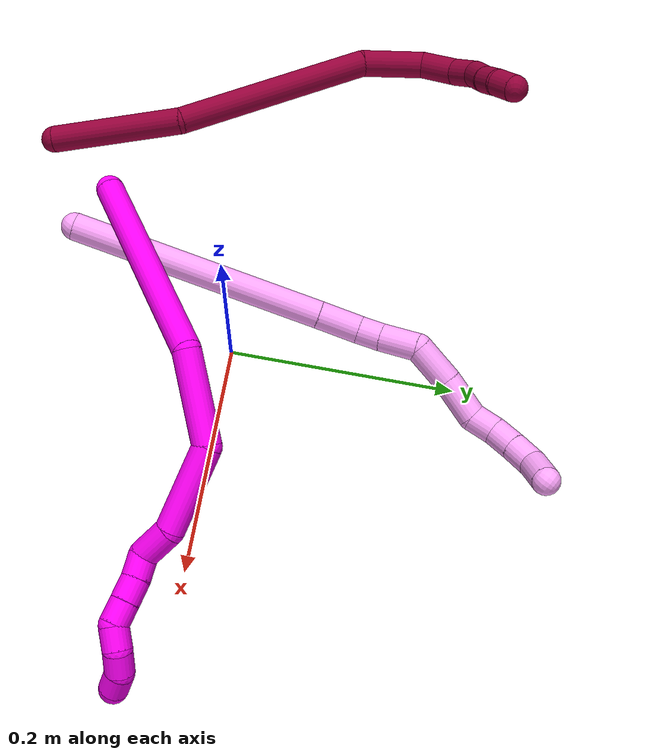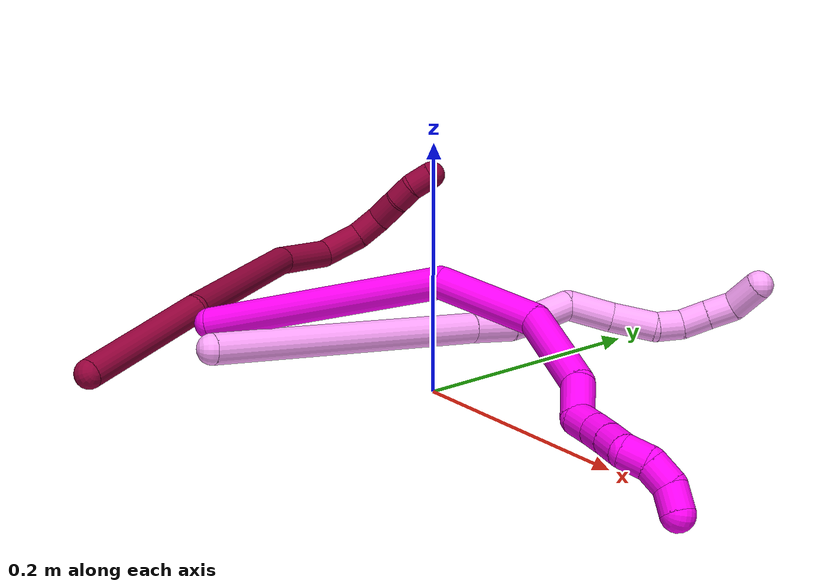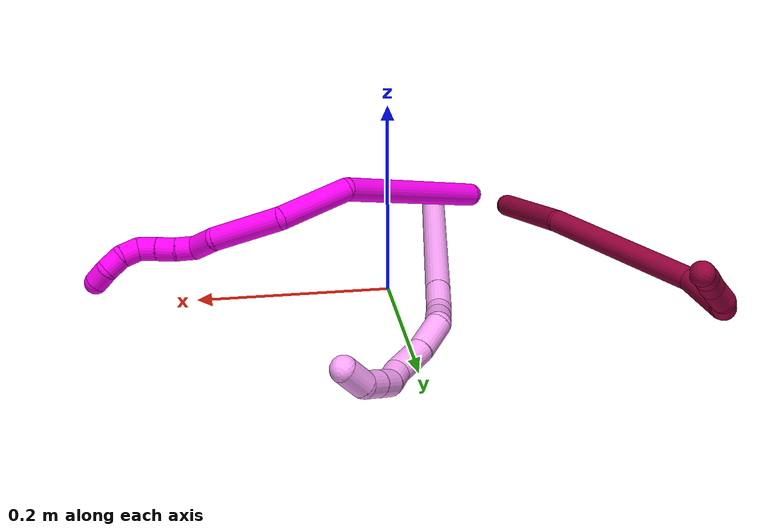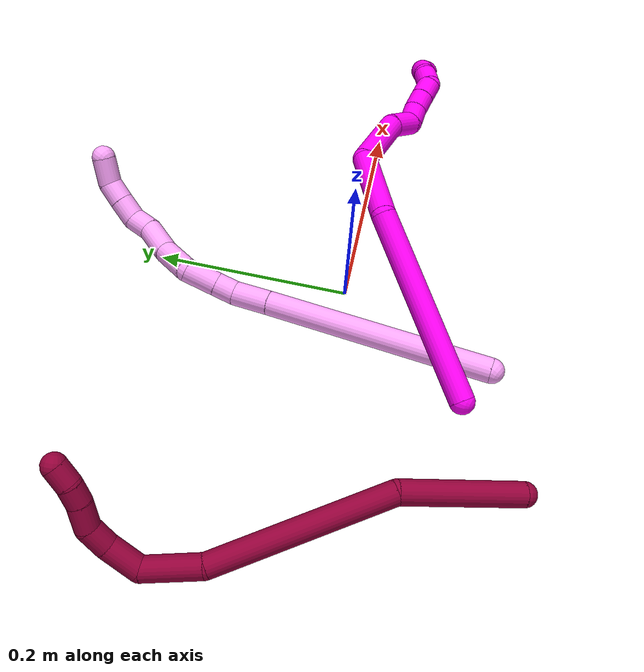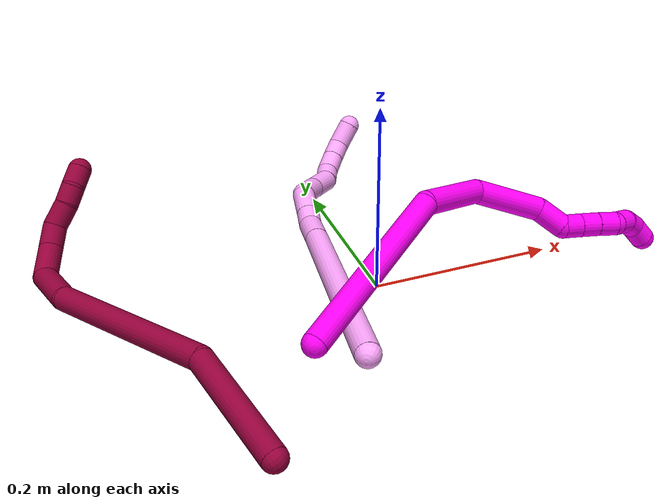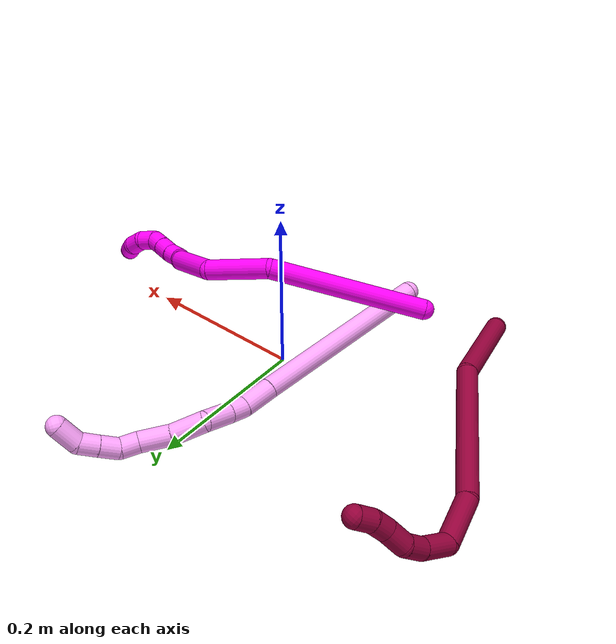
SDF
<sdf version="1.7">
 <world name="default">
  <model name="4">
   <static>0</static>
   <link name="4">
    <collision name="collision-cylinder-e_1_1_4">
     <pose>0.039434 -0.006674 0.108438 0.061467 0.348181 0.010813</pose>
     <geometry><cylinder><radius>0.0125</radius><length>0.231157</length></cylinder></geometry>
     <surface>
      <friction><ode><mu>1.16</mu><mu2>1.16</mu2><slip1>0</slip1><slip2>0</slip2></ode></friction>
      <contact><ode><kp>1e+06</kp><kd>1</kd><max_vel>0</max_vel><min_depth>0.001</min_depth></ode></contact>
     </surface>
    </collision>
    <visual name="visual-cylinder-e_1_1_4">
     <pose>0.039434 -0.006674 0.108438 0.061467 0.348181 0.010813</pose>
     <geometry><cylinder><radius>0.0125</radius><length>0.231157</length></cylinder></geometry>
     <material><ambient>1 0.65098 0.996078 1</ambient></material>
    </visual>
    <collision name="collision-cylinder-e_2_4_5">
     <pose>0.085359 -0.015014 0.23478 0.092791 0.346415 0.016246</pose>
     <geometry><cylinder><radius>0.0125</radius><length>0.038234</length></cylinder></geometry>
     <surface>
      <friction><ode><mu>1.16</mu><mu2>1.16</mu2><slip1>0</slip1><slip2>0</slip2></ode></friction>
      <contact><ode><kp>1e+06</kp><kd>1</kd><max_vel>0</max_vel><min_depth>0.001</min_depth></ode></contact>
     </surface>
    </collision>
    <visual name="visual-cylinder-e_2_4_5">
     <pose>0.085359 -0.015014 0.23478 0.092791 0.346415 0.016246</pose>
     <geometry><cylinder><radius>0.0125</radius><length>0.038234</length></cylinder></geometry>
     <material><ambient>1 0.65098 0.996078 1</ambient></material>
    </visual>
    <collision name="collision-cylinder-e_3_5_6">
     <pose>0.094979 -0.014811 0.262877 -0.181271 0.293294 -0.026847</pose>
     <geometry><cylinder><radius>0.0125</radius><length>0.02165</length></cylinder></geometry>
     <surface>
      <friction><ode><mu>1.16</mu><mu2>1.16</mu2><slip1>0</slip1><slip2>0</slip2></ode></friction>
      <contact><ode><kp>1e+06</kp><kd>1</kd><max_vel>0</max_vel><min_depth>0.001</min_depth></ode></contact>
     </surface>
    </collision>
    <visual name="visual-cylinder-e_3_5_6">
     <pose>0.094979 -0.014811 0.262877 -0.181271 0.293294 -0.026847</pose>
     <geometry><cylinder><radius>0.0125</radius><length>0.02165</length></cylinder></geometry>
     <material><ambient>1 0.65098 0.996078 1</ambient></material>
    </visual>
    <collision name="collision-cylinder-e_4_6_7">
     <pose>0.103484 -0.008676 0.288618 -0.267848 0.321811 -0.043729</pose>
     <geometry><cylinder><radius>0.0125</radius><length>0.033992</length></cylinder></geometry>
     <surface>
      <friction><ode><mu>1.16</mu><mu2>1.16</mu2><slip1>0</slip1><slip2>0</slip2></ode></friction>
      <contact><ode><kp>1e+06</kp><kd>1</kd><max_vel>0</max_vel><min_depth>0.001</min_depth></ode></contact>
     </surface>
    </collision>
    <visual name="visual-cylinder-e_4_6_7">
     <pose>0.103484 -0.008676 0.288618 -0.267848 0.321811 -0.043729</pose>
     <geometry><cylinder><radius>0.0125</radius><length>0.033992</length></cylinder></geometry>
     <material><ambient>1 0.65098 0.996078 1</ambient></material>
    </visual>
    <collision name="collision-cylinder-e_5_7_8">
     <pose>0.106328 -0.009001 0.322676 0.243184 -0.131992 -0.016152</pose>
     <geometry><cylinder><radius>0.0125</radius><length>0.038476</length></cylinder></geometry>
     <surface>
      <friction><ode><mu>1.16</mu><mu2>1.16</mu2><slip1>0</slip1><slip2>0</slip2></ode></friction>
      <contact><ode><kp>1e+06</kp><kd>1</kd><max_vel>0</max_vel><min_depth>0.001</min_depth></ode></contact>
     </surface>
    </collision>
    <visual name="visual-cylinder-e_5_7_8">
     <pose>0.106328 -0.009001 0.322676 0.243184 -0.131992 -0.016152</pose>
     <geometry><cylinder><radius>0.0125</radius><length>0.038476</length></cylinder></geometry>
     <material><ambient>1 0.65098 0.996078 1</ambient></material>
    </visual>
    <collision name="collision-cylinder-e_6_8_9">
     <pose>0.098615 -0.0161 0.359394 0.136811 -0.274733 -0.018941</pose>
     <geometry><cylinder><radius>0.0125</radius><length>0.038193</length></cylinder></geometry>
     <surface>
      <friction><ode><mu>1.16</mu><mu2>1.16</mu2><slip1>0</slip1><slip2>0</slip2></ode></friction>
      <contact><ode><kp>1e+06</kp><kd>1</kd><max_vel>0</max_vel><min_depth>0.001</min_depth></ode></contact>
     </surface>
    </collision>
    <visual name="visual-cylinder-e_6_8_9">
     <pose>0.098615 -0.0161 0.359394 0.136811 -0.274733 -0.018941</pose>
     <geometry><cylinder><radius>0.0125</radius><length>0.038193</length></cylinder></geometry>
     <material><ambient>1 0.65098 0.996078 1</ambient></material>
    </visual>
    <collision name="collision-cylinder-e_7_9_10">
     <pose>0.094399 -0.017911 0.389017 -0.060867 0.084156 -0.002563</pose>
     <geometry><cylinder><radius>0.0125</radius><length>0.022953</length></cylinder></geometry>
     <surface>
      <friction><ode><mu>1.16</mu><mu2>1.16</mu2><slip1>0</slip1><slip2>0</slip2></ode></friction>
      <contact><ode><kp>1e+06</kp><kd>1</kd><max_vel>0</max_vel><min_depth>0.001</min_depth></ode></contact>
     </surface>
    </collision>
    <visual name="visual-cylinder-e_7_9_10">
     <pose>0.094399 -0.017911 0.389017 -0.060867 0.084156 -0.002563</pose>
     <geometry><cylinder><radius>0.0125</radius><length>0.022953</length></cylinder></geometry>
     <material><ambient>1 0.65098 0.996078 1</ambient></material>
    </visual>
    <collision name="collision-cylinder-e_8_10_11">
     <pose>0.093599 -0.012255 0.410898 -0.442594 -0.151263 0.034093</pose>
     <geometry><cylinder><radius>0.0125</radius><length>0.023432</length></cylinder></geometry>
     <surface>
      <friction><ode><mu>1.16</mu><mu2>1.16</mu2><slip1>0</slip1><slip2>0</slip2></ode></friction>
      <contact><ode><kp>1e+06</kp><kd>1</kd><max_vel>0</max_vel><min_depth>0.001</min_depth></ode></contact>
     </surface>
    </collision>
    <visual name="visual-cylinder-e_8_10_11">
     <pose>0.093599 -0.012255 0.410898 -0.442594 -0.151263 0.034093</pose>
     <geometry><cylinder><radius>0.0125</radius><length>0.023432</length></cylinder></geometry>
     <material><ambient>1 0.65098 0.996078 1</ambient></material>
    </visual>
    <collision name="collision-cylinder-e_9_11_12">
     <pose>0.089702 -0.002587 0.431555 -0.432758 -0.187612 0.041356</pose>
     <geometry><cylinder><radius>0.0125</radius><length>0.022852</length></cylinder></geometry>
     <surface>
      <friction><ode><mu>1.16</mu><mu2>1.16</mu2><slip1>0</slip1><slip2>0</slip2></ode></friction>
      <contact><ode><kp>1e+06</kp><kd>1</kd><max_vel>0</max_vel><min_depth>0.001</min_depth></ode></contact>
     </surface>
    </collision>
    <visual name="visual-cylinder-e_9_11_12">
     <pose>0.089702 -0.002587 0.431555 -0.432758 -0.187612 0.041356</pose>
     <geometry><cylinder><radius>0.0125</radius><length>0.022852</length></cylinder></geometry>
     <material><ambient>1 0.65098 0.996078 1</ambient></material>
    </visual>
    <collision name="collision-cylinder-e_10_12_2">
     <pose>0.082129 0.013092 0.449567 -0.95142 -0.383878 0.199563</pose>
     <geometry><cylinder><radius>0.0125</radius><length>0.029062</length></cylinder></geometry>
     <surface>
      <friction><ode><mu>1.16</mu><mu2>1.16</mu2><slip1>0</slip1><slip2>0</slip2></ode></friction>
      <contact><ode><kp>1e+06</kp><kd>1</kd><max_vel>0</max_vel><min_depth>0.001</min_depth></ode></contact>
     </surface>
    </collision>
    <visual name="visual-cylinder-e_10_12_2">
     <pose>0.082129 0.013092 0.449567 -0.95142 -0.383878 0.199563</pose>
     <geometry><cylinder><radius>0.0125</radius><length>0.029062</length></cylinder></geometry>
     <material><ambient>1 0.65098 0.996078 1</ambient></material>
    </visual>
    <collision name="collision-sphere-2">
     <pose>0.076687 0.024062 0.457389 0 -0 0</pose>
     <geometry><sphere><radius>0.0125</radius></sphere></geometry>
     <surface>
      <friction><ode><mu>1.16</mu><mu2>1.16</mu2><slip1>0</slip1><slip2>0</slip2></ode></friction>
      <contact><ode><kp>1e+06</kp><kd>1</kd><max_vel>0</max_vel><min_depth>0.001</min_depth></ode></contact>
     </surface>
    </collision>
    <visual name="visual-sphere-2">
     <pose>0.076687 0.024062 0.457389 0 -0 0</pose>
     <geometry><sphere><radius>0.0125</radius></sphere></geometry>
     <material><ambient>1 0.65098 0.996078 1</ambient></material>
    </visual>
    <collision name="collision-sphere-12">
     <pose>0.087571 0.002121 0.441745 0 -0 0</pose>
     <geometry><sphere><radius>0.0125</radius></sphere></geometry>
     <surface>
      <friction><ode><mu>1.16</mu><mu2>1.16</mu2><slip1>0</slip1><slip2>0</slip2></ode></friction>
      <contact><ode><kp>1e+06</kp><kd>1</kd><max_vel>0</max_vel><min_depth>0.001</min_depth></ode></contact>
     </surface>
    </collision>
    <visual name="visual-sphere-12">
     <pose>0.087571 0.002121 0.441745 0 -0 0</pose>
     <geometry><sphere><radius>0.0125</radius></sphere></geometry>
     <material><ambient>1 0.65098 0.996078 1</ambient></material>
    </visual>
    <collision name="collision-sphere-11">
     <pose>0.091833 -0.007294 0.421364 0 -0 0</pose>
     <geometry><sphere><radius>0.0125</radius></sphere></geometry>
     <surface>
      <friction><ode><mu>1.16</mu><mu2>1.16</mu2><slip1>0</slip1><slip2>0</slip2></ode></friction>
      <contact><ode><kp>1e+06</kp><kd>1</kd><max_vel>0</max_vel><min_depth>0.001</min_depth></ode></contact>
     </surface>
    </collision>
    <visual name="visual-sphere-11">
     <pose>0.091833 -0.007294 0.421364 0 -0 0</pose>
     <geometry><sphere><radius>0.0125</radius></sphere></geometry>
     <material><ambient>1 0.65098 0.996078 1</ambient></material>
    </visual>
    <collision name="collision-sphere-10">
     <pose>0.095364 -0.017215 0.400432 0 -0 0</pose>
     <geometry><sphere><radius>0.0125</radius></sphere></geometry>
     <surface>
      <friction><ode><mu>1.16</mu><mu2>1.16</mu2><slip1>0</slip1><slip2>0</slip2></ode></friction>
      <contact><ode><kp>1e+06</kp><kd>1</kd><max_vel>0</max_vel><min_depth>0.001</min_depth></ode></contact>
     </surface>
    </collision>
    <visual name="visual-sphere-10">
     <pose>0.095364 -0.017215 0.400432 0 -0 0</pose>
     <geometry><sphere><radius>0.0125</radius></sphere></geometry>
     <material><ambient>1 0.65098 0.996078 1</ambient></material>
    </visual>
    <collision name="collision-sphere-9">
     <pose>0.093435 -0.018607 0.377602 0 -0 0</pose>
     <geometry><sphere><radius>0.0125</radius></sphere></geometry>
     <surface>
      <friction><ode><mu>1.16</mu><mu2>1.16</mu2><slip1>0</slip1><slip2>0</slip2></ode></friction>
      <contact><ode><kp>1e+06</kp><kd>1</kd><max_vel>0</max_vel><min_depth>0.001</min_depth></ode></contact>
     </surface>
    </collision>
    <visual name="visual-sphere-9">
     <pose>0.093435 -0.018607 0.377602 0 -0 0</pose>
     <geometry><sphere><radius>0.0125</radius></sphere></geometry>
     <material><ambient>1 0.65098 0.996078 1</ambient></material>
    </visual>
    <collision name="collision-sphere-4">
     <pose>0.078868 -0.013347 0.216876 0 -0 0</pose>
     <geometry><sphere><radius>0.0125</radius></sphere></geometry>
     <surface>
      <friction><ode><mu>1.16</mu><mu2>1.16</mu2><slip1>0</slip1><slip2>0</slip2></ode></friction>
      <contact><ode><kp>1e+06</kp><kd>1</kd><max_vel>0</max_vel><min_depth>0.001</min_depth></ode></contact>
     </surface>
    </collision>
    <visual name="visual-sphere-4">
     <pose>0.078868 -0.013347 0.216876 0 -0 0</pose>
     <geometry><sphere><radius>0.0125</radius></sphere></geometry>
     <material><ambient>1 0.65098 0.996078 1</ambient></material>
    </visual>
    <collision name="collision-sphere-1">
     <geometry><sphere><radius>0.0125</radius></sphere></geometry>
     <surface>
      <friction><ode><mu>1.16</mu><mu2>1.16</mu2><slip1>0</slip1><slip2>0</slip2></ode></friction>
      <contact><ode><kp>1e+06</kp><kd>1</kd><max_vel>0</max_vel><min_depth>0.001</min_depth></ode></contact>
     </surface>
    </collision>
    <visual name="visual-sphere-1">
     <geometry><sphere><radius>0.0125</radius></sphere></geometry>
     <material><ambient>1 0.65098 0.996078 1</ambient></material>
    </visual>
    <collision name="collision-sphere-8">
     <pose>0.103796 -0.013593 0.341185 0 -0 0</pose>
     <geometry><sphere><radius>0.0125</radius></sphere></geometry>
     <surface>
      <friction><ode><mu>1.16</mu><mu2>1.16</mu2><slip1>0</slip1><slip2>0</slip2></ode></friction>
      <contact><ode><kp>1e+06</kp><kd>1</kd><max_vel>0</max_vel><min_depth>0.001</min_depth></ode></contact>
     </surface>
    </collision>
    <visual name="visual-sphere-8">
     <pose>0.103796 -0.013593 0.341185 0 -0 0</pose>
     <geometry><sphere><radius>0.0125</radius></sphere></geometry>
     <material><ambient>1 0.65098 0.996078 1</ambient></material>
    </visual>
    <collision name="collision-sphere-5">
     <pose>0.091849 -0.01668 0.252684 0 -0 0</pose>
     <geometry><sphere><radius>0.0125</radius></sphere></geometry>
     <surface>
      <friction><ode><mu>1.16</mu><mu2>1.16</mu2><slip1>0</slip1><slip2>0</slip2></ode></friction>
      <contact><ode><kp>1e+06</kp><kd>1</kd><max_vel>0</max_vel><min_depth>0.001</min_depth></ode></contact>
     </surface>
    </collision>
    <visual name="visual-sphere-5">
     <pose>0.091849 -0.01668 0.252684 0 -0 0</pose>
     <geometry><sphere><radius>0.0125</radius></sphere></geometry>
     <material><ambient>1 0.65098 0.996078 1</ambient></material>
    </visual>
    <collision name="collision-sphere-6">
     <pose>0.098109 -0.012943 0.27307 0 -0 0</pose>
     <geometry><sphere><radius>0.0125</radius></sphere></geometry>
     <surface>
      <friction><ode><mu>1.16</mu><mu2>1.16</mu2><slip1>0</slip1><slip2>0</slip2></ode></friction>
      <contact><ode><kp>1e+06</kp><kd>1</kd><max_vel>0</max_vel><min_depth>0.001</min_depth></ode></contact>
     </surface>
    </collision>
    <visual name="visual-sphere-6">
     <pose>0.098109 -0.012943 0.27307 0 -0 0</pose>
     <geometry><sphere><radius>0.0125</radius></sphere></geometry>
     <material><ambient>1 0.65098 0.996078 1</ambient></material>
    </visual>
    <collision name="collision-sphere-7">
     <pose>0.10886 -0.004409 0.304166 0 -0 0</pose>
     <geometry><sphere><radius>0.0125</radius></sphere></geometry>
     <surface>
      <friction><ode><mu>1.16</mu><mu2>1.16</mu2><slip1>0</slip1><slip2>0</slip2></ode></friction>
      <contact><ode><kp>1e+06</kp><kd>1</kd><max_vel>0</max_vel><min_depth>0.001</min_depth></ode></contact>
     </surface>
    </collision>
    <visual name="visual-sphere-7">
     <pose>0.10886 -0.004409 0.304166 0 -0 0</pose>
     <geometry><sphere><radius>0.0125</radius></sphere></geometry>
     <material><ambient>1 0.65098 0.996078 1</ambient></material>
    </visual>
    <inertial>
     <pose>0.069214 -0.008141 0.234341 0 -0 0</pose>
     <mass>0.5</mass>
     <inertia>
      <ixx>0.001025</ixx>
      <ixy>0</ixy>
      <ixz>0</ixz>
      <iyy>0.001081</iyy>
      <iyz>0</iyz>
      <izz>-0.000261</izz>
     </inertia>
    </inertial>
   </link>
   <pose>-0.074496 -0.155553 0.04907 1.62565 -0.027561 2.63949</pose>
  </model>
  <model name="8">
   <static>0</static>
   <link name="8">
    <collision name="collision-cylinder-e_1_1_4">
     <pose>0.000917 0.061481 0.005154 -1.48717 0.014859 -0.013665</pose>
     <geometry><cylinder><radius>0.0125</radius><length>0.123407</length></cylinder></geometry>
     <surface>
      <friction><ode><mu>1.16</mu><mu2>1.16</mu2><slip1>0</slip1><slip2>0</slip2></ode></friction>
      <contact><ode><kp>1e+06</kp><kd>1</kd><max_vel>0</max_vel><min_depth>0.001</min_depth></ode></contact>
     </surface>
    </collision>
    <visual name="visual-cylinder-e_1_1_4">
     <pose>0.000917 0.061481 0.005154 -1.48717 0.014859 -0.013665</pose>
     <geometry><cylinder><radius>0.0125</radius><length>0.123407</length></cylinder></geometry>
     <material><ambient>0.584314 0 0.227451 1</ambient></material>
    </visual>
    <collision name="collision-cylinder-e_2_4_5">
     <pose>-0.002787 0.205485 0.053435 -1.08922 -0.049579 0.030034</pose>
     <geometry><cylinder><radius>0.0125</radius><length>0.186455</length></cylinder></geometry>
     <surface>
      <friction><ode><mu>1.16</mu><mu2>1.16</mu2><slip1>0</slip1><slip2>0</slip2></ode></friction>
      <contact><ode><kp>1e+06</kp><kd>1</kd><max_vel>0</max_vel><min_depth>0.001</min_depth></ode></contact>
     </surface>
    </collision>
    <visual name="visual-cylinder-e_2_4_5">
     <pose>-0.002787 0.205485 0.053435 -1.08922 -0.049579 0.030034</pose>
     <geometry><cylinder><radius>0.0125</radius><length>0.186455</length></cylinder></geometry>
     <material><ambient>0.584314 0 0.227451 1</ambient></material>
    </visual>
    <collision name="collision-cylinder-e_3_5_6">
     <pose>-0.015168 0.316367 0.102679 -1.35834 -0.261402 0.211447</pose>
     <geometry><cylinder><radius>0.0125</radius><length>0.060064</length></cylinder></geometry>
     <surface>
      <friction><ode><mu>1.16</mu><mu2>1.16</mu2><slip1>0</slip1><slip2>0</slip2></ode></friction>
      <contact><ode><kp>1e+06</kp><kd>1</kd><max_vel>0</max_vel><min_depth>0.001</min_depth></ode></contact>
     </surface>
    </collision>
    <visual name="visual-cylinder-e_3_5_6">
     <pose>-0.015168 0.316367 0.102679 -1.35834 -0.261402 0.211447</pose>
     <geometry><cylinder><radius>0.0125</radius><length>0.060064</length></cylinder></geometry>
     <material><ambient>0.584314 0 0.227451 1</ambient></material>
    </visual>
    <collision name="collision-cylinder-e_4_6_7">
     <pose>-0.022773 0.360773 0.099602 -2.09112 0.008432 -0.01455</pose>
     <geometry><cylinder><radius>0.0125</radius><length>0.036989</length></cylinder></geometry>
     <surface>
      <friction><ode><mu>1.16</mu><mu2>1.16</mu2><slip1>0</slip1><slip2>0</slip2></ode></friction>
      <contact><ode><kp>1e+06</kp><kd>1</kd><max_vel>0</max_vel><min_depth>0.001</min_depth></ode></contact>
     </surface>
    </collision>
    <visual name="visual-cylinder-e_4_6_7">
     <pose>-0.022773 0.360773 0.099602 -2.09112 0.008432 -0.01455</pose>
     <geometry><cylinder><radius>0.0125</radius><length>0.036989</length></cylinder></geometry>
     <material><ambient>0.584314 0 0.227451 1</ambient></material>
    </visual>
    <collision name="collision-cylinder-e_5_7_8">
     <pose>-0.019777 0.386184 0.082559 -2.26834 0.228417 -0.482049</pose>
     <geometry><cylinder><radius>0.0125</radius><length>0.025089</length></cylinder></geometry>
     <surface>
      <friction><ode><mu>1.16</mu><mu2>1.16</mu2><slip1>0</slip1><slip2>0</slip2></ode></friction>
      <contact><ode><kp>1e+06</kp><kd>1</kd><max_vel>0</max_vel><min_depth>0.001</min_depth></ode></contact>
     </surface>
    </collision>
    <visual name="visual-cylinder-e_5_7_8">
     <pose>-0.019777 0.386184 0.082559 -2.26834 0.228417 -0.482049</pose>
     <geometry><cylinder><radius>0.0125</radius><length>0.025089</length></cylinder></geometry>
     <material><ambient>0.584314 0 0.227451 1</ambient></material>
    </visual>
    <collision name="collision-cylinder-e_6_8_9">
     <pose>-0.012901 0.400489 0.06312 -2.73869 0.309973 -1.30613</pose>
     <geometry><cylinder><radius>0.0125</radius><length>0.02646</length></cylinder></geometry>
     <surface>
      <friction><ode><mu>1.16</mu><mu2>1.16</mu2><slip1>0</slip1><slip2>0</slip2></ode></friction>
      <contact><ode><kp>1e+06</kp><kd>1</kd><max_vel>0</max_vel><min_depth>0.001</min_depth></ode></contact>
     </surface>
    </collision>
    <visual name="visual-cylinder-e_6_8_9">
     <pose>-0.012901 0.400489 0.06312 -2.73869 0.309973 -1.30613</pose>
     <geometry><cylinder><radius>0.0125</radius><length>0.02646</length></cylinder></geometry>
     <material><ambient>0.584314 0 0.227451 1</ambient></material>
    </visual>
    <collision name="collision-cylinder-e_7_9_10">
     <pose>-0.005766 0.4107 0.043503 -2.56052 0.312218 -0.969069</pose>
     <geometry><cylinder><radius>0.0125</radius><length>0.020182</length></cylinder></geometry>
     <surface>
      <friction><ode><mu>1.16</mu><mu2>1.16</mu2><slip1>0</slip1><slip2>0</slip2></ode></friction>
      <contact><ode><kp>1e+06</kp><kd>1</kd><max_vel>0</max_vel><min_depth>0.001</min_depth></ode></contact>
     </surface>
    </collision>
    <visual name="visual-cylinder-e_7_9_10">
     <pose>-0.005766 0.4107 0.043503 -2.56052 0.312218 -0.969069</pose>
     <geometry><cylinder><radius>0.0125</radius><length>0.020182</length></cylinder></geometry>
     <material><ambient>0.584314 0 0.227451 1</ambient></material>
    </visual>
    <collision name="collision-cylinder-e_8_10_2">
     <pose>-0.001588 0.423329 0.027813 -2.37649 0.101147 -0.250275</pose>
     <geometry><cylinder><radius>0.0125</radius><length>0.021355</length></cylinder></geometry>
     <surface>
      <friction><ode><mu>1.16</mu><mu2>1.16</mu2><slip1>0</slip1><slip2>0</slip2></ode></friction>
      <contact><ode><kp>1e+06</kp><kd>1</kd><max_vel>0</max_vel><min_depth>0.001</min_depth></ode></contact>
     </surface>
    </collision>
    <visual name="visual-cylinder-e_8_10_2">
     <pose>-0.001588 0.423329 0.027813 -2.37649 0.101147 -0.250275</pose>
     <geometry><cylinder><radius>0.0125</radius><length>0.021355</length></cylinder></geometry>
     <material><ambient>0.584314 0 0.227451 1</ambient></material>
    </visual>
    <collision name="collision-sphere-2">
     <pose>-0.00051 0.430686 0.020151 0 -0 0</pose>
     <geometry><sphere><radius>0.0125</radius></sphere></geometry>
     <surface>
      <friction><ode><mu>1.16</mu><mu2>1.16</mu2><slip1>0</slip1><slip2>0</slip2></ode></friction>
      <contact><ode><kp>1e+06</kp><kd>1</kd><max_vel>0</max_vel><min_depth>0.001</min_depth></ode></contact>
     </surface>
    </collision>
    <visual name="visual-sphere-2">
     <pose>-0.00051 0.430686 0.020151 0 -0 0</pose>
     <geometry><sphere><radius>0.0125</radius></sphere></geometry>
     <material><ambient>0.584314 0 0.227451 1</ambient></material>
    </visual>
    <collision name="collision-sphere-10">
     <pose>-0.002666 0.415972 0.035476 0 -0 0</pose>
     <geometry><sphere><radius>0.0125</radius></sphere></geometry>
     <surface>
      <friction><ode><mu>1.16</mu><mu2>1.16</mu2><slip1>0</slip1><slip2>0</slip2></ode></friction>
      <contact><ode><kp>1e+06</kp><kd>1</kd><max_vel>0</max_vel><min_depth>0.001</min_depth></ode></contact>
     </surface>
    </collision>
    <visual name="visual-sphere-10">
     <pose>-0.002666 0.415972 0.035476 0 -0 0</pose>
     <geometry><sphere><radius>0.0125</radius></sphere></geometry>
     <material><ambient>0.584314 0 0.227451 1</ambient></material>
    </visual>
    <collision name="collision-sphere-9">
     <pose>-0.008865 0.405429 0.05153 0 -0 0</pose>
     <geometry><sphere><radius>0.0125</radius></sphere></geometry>
     <surface>
      <friction><ode><mu>1.16</mu><mu2>1.16</mu2><slip1>0</slip1><slip2>0</slip2></ode></friction>
      <contact><ode><kp>1e+06</kp><kd>1</kd><max_vel>0</max_vel><min_depth>0.001</min_depth></ode></contact>
     </surface>
    </collision>
    <visual name="visual-sphere-9">
     <pose>-0.008865 0.405429 0.05153 0 -0 0</pose>
     <geometry><sphere><radius>0.0125</radius></sphere></geometry>
     <material><ambient>0.584314 0 0.227451 1</ambient></material>
    </visual>
    <collision name="collision-sphere-4">
     <pose>0.001834 0.122962 0.010307 0 -0 0</pose>
     <geometry><sphere><radius>0.0125</radius></sphere></geometry>
     <surface>
      <friction><ode><mu>1.16</mu><mu2>1.16</mu2><slip1>0</slip1><slip2>0</slip2></ode></friction>
      <contact><ode><kp>1e+06</kp><kd>1</kd><max_vel>0</max_vel><min_depth>0.001</min_depth></ode></contact>
     </surface>
    </collision>
    <visual name="visual-sphere-4">
     <pose>0.001834 0.122962 0.010307 0 -0 0</pose>
     <geometry><sphere><radius>0.0125</radius></sphere></geometry>
     <material><ambient>0.584314 0 0.227451 1</ambient></material>
    </visual>
    <collision name="collision-sphere-1">
     <geometry><sphere><radius>0.0125</radius></sphere></geometry>
     <surface>
      <friction><ode><mu>1.16</mu><mu2>1.16</mu2><slip1>0</slip1><slip2>0</slip2></ode></friction>
      <contact><ode><kp>1e+06</kp><kd>1</kd><max_vel>0</max_vel><min_depth>0.001</min_depth></ode></contact>
     </surface>
    </collision>
    <visual name="visual-sphere-1">
     <geometry><sphere><radius>0.0125</radius></sphere></geometry>
     <material><ambient>0.584314 0 0.227451 1</ambient></material>
    </visual>
    <collision name="collision-sphere-8">
     <pose>-0.016936 0.395548 0.074711 0 -0 0</pose>
     <geometry><sphere><radius>0.0125</radius></sphere></geometry>
     <surface>
      <friction><ode><mu>1.16</mu><mu2>1.16</mu2><slip1>0</slip1><slip2>0</slip2></ode></friction>
      <contact><ode><kp>1e+06</kp><kd>1</kd><max_vel>0</max_vel><min_depth>0.001</min_depth></ode></contact>
     </surface>
    </collision>
    <visual name="visual-sphere-8">
     <pose>-0.016936 0.395548 0.074711 0 -0 0</pose>
     <geometry><sphere><radius>0.0125</radius></sphere></geometry>
     <material><ambient>0.584314 0 0.227451 1</ambient></material>
    </visual>
    <collision name="collision-sphere-5">
     <pose>-0.007407 0.288008 0.096562 0 -0 0</pose>
     <geometry><sphere><radius>0.0125</radius></sphere></geometry>
     <surface>
      <friction><ode><mu>1.16</mu><mu2>1.16</mu2><slip1>0</slip1><slip2>0</slip2></ode></friction>
      <contact><ode><kp>1e+06</kp><kd>1</kd><max_vel>0</max_vel><min_depth>0.001</min_depth></ode></contact>
     </surface>
    </collision>
    <visual name="visual-sphere-5">
     <pose>-0.007407 0.288008 0.096562 0 -0 0</pose>
     <geometry><sphere><radius>0.0125</radius></sphere></geometry>
     <material><ambient>0.584314 0 0.227451 1</ambient></material>
    </visual>
    <collision name="collision-sphere-6">
     <pose>-0.022929 0.344727 0.108797 0 -0 0</pose>
     <geometry><sphere><radius>0.0125</radius></sphere></geometry>
     <surface>
      <friction><ode><mu>1.16</mu><mu2>1.16</mu2><slip1>0</slip1><slip2>0</slip2></ode></friction>
      <contact><ode><kp>1e+06</kp><kd>1</kd><max_vel>0</max_vel><min_depth>0.001</min_depth></ode></contact>
     </surface>
    </collision>
    <visual name="visual-sphere-6">
     <pose>-0.022929 0.344727 0.108797 0 -0 0</pose>
     <geometry><sphere><radius>0.0125</radius></sphere></geometry>
     <material><ambient>0.584314 0 0.227451 1</ambient></material>
    </visual>
    <collision name="collision-sphere-7">
     <pose>-0.022617 0.376819 0.090408 0 -0 0</pose>
     <geometry><sphere><radius>0.0125</radius></sphere></geometry>
     <surface>
      <friction><ode><mu>1.16</mu><mu2>1.16</mu2><slip1>0</slip1><slip2>0</slip2></ode></friction>
      <contact><ode><kp>1e+06</kp><kd>1</kd><max_vel>0</max_vel><min_depth>0.001</min_depth></ode></contact>
     </surface>
    </collision>
    <visual name="visual-sphere-7">
     <pose>-0.022617 0.376819 0.090408 0 -0 0</pose>
     <geometry><sphere><radius>0.0125</radius></sphere></geometry>
     <material><ambient>0.584314 0 0.227451 1</ambient></material>
    </visual>
    <inertial>
     <pose>-0.006295 0.231725 0.051328 0 -0 0</pose>
     <mass>0.5</mass>
     <inertia>
      <ixx>0.000751</ixx>
      <ixy>0</ixy>
      <ixz>0</ixz>
      <iyy>0.000314</iyy>
      <iyz>0</iyz>
      <izz>-0.000645</izz>
     </inertia>
    </inertial>
   </link>
   <pose>-0.175508 -0.206746 0.011497 2.71624 -1.08244 -2.59409</pose>
  </model>
  <model name="10">
   <static>0</static>
   <link name="10">
    <collision name="collision-cylinder-e_1_1_4">
     <pose>0.036927 0.057414 -0.068797 -2.44615 0.390895 -0.999858</pose>
     <geometry><cylinder><radius>0.0125</radius><length>0.193835</length></cylinder></geometry>
     <surface>
      <friction><ode><mu>1.16</mu><mu2>1.16</mu2><slip1>0</slip1><slip2>0</slip2></ode></friction>
      <contact><ode><kp>1e+06</kp><kd>1</kd><max_vel>0</max_vel><min_depth>0.001</min_depth></ode></contact>
     </surface>
    </collision>
    <visual name="visual-cylinder-e_1_1_4">
     <pose>0.036927 0.057414 -0.068797 -2.44615 0.390895 -0.999858</pose>
     <geometry><cylinder><radius>0.0125</radius><length>0.193835</length></cylinder></geometry>
     <material><ambient>1 0 0.964706 1</ambient></material>
    </visual>
    <collision name="collision-cylinder-e_2_4_5">
     <pose>0.101162 0.121901 -0.166045 -2.89792 0.749928 -2.53837</pose>
     <geometry><cylinder><radius>0.0125</radius><length>0.08013</length></cylinder></geometry>
     <surface>
      <friction><ode><mu>1.16</mu><mu2>1.16</mu2><slip1>0</slip1><slip2>0</slip2></ode></friction>
      <contact><ode><kp>1e+06</kp><kd>1</kd><max_vel>0</max_vel><min_depth>0.001</min_depth></ode></contact>
     </surface>
    </collision>
    <visual name="visual-cylinder-e_2_4_5">
     <pose>0.101162 0.121901 -0.166045 -2.89792 0.749928 -2.53837</pose>
     <geometry><cylinder><radius>0.0125</radius><length>0.08013</length></cylinder></geometry>
     <material><ambient>1 0 0.964706 1</ambient></material>
    </visual>
    <collision name="collision-cylinder-e_3_5_6">
     <pose>0.164999 0.128855 -0.200734 3.12242 1.40164 3.11887</pose>
     <geometry><cylinder><radius>0.0125</radius><length>0.074117</length></cylinder></geometry>
     <surface>
      <friction><ode><mu>1.16</mu><mu2>1.16</mu2><slip1>0</slip1><slip2>0</slip2></ode></friction>
      <contact><ode><kp>1e+06</kp><kd>1</kd><max_vel>0</max_vel><min_depth>0.001</min_depth></ode></contact>
     </surface>
    </collision>
    <visual name="visual-cylinder-e_3_5_6">
     <pose>0.164999 0.128855 -0.200734 3.12242 1.40164 3.11887</pose>
     <geometry><cylinder><radius>0.0125</radius><length>0.074117</length></cylinder></geometry>
     <material><ambient>1 0 0.964706 1</ambient></material>
    </visual>
    <collision name="collision-cylinder-e_4_6_7">
     <pose>0.216451 0.124259 -0.203856 0.962667 1.22042 0.700326</pose>
     <geometry><cylinder><radius>0.0125</radius><length>0.031775</length></cylinder></geometry>
     <surface>
      <friction><ode><mu>1.16</mu><mu2>1.16</mu2><slip1>0</slip1><slip2>0</slip2></ode></friction>
      <contact><ode><kp>1e+06</kp><kd>1</kd><max_vel>0</max_vel><min_depth>0.001</min_depth></ode></contact>
     </surface>
    </collision>
    <visual name="visual-cylinder-e_4_6_7">
     <pose>0.216451 0.124259 -0.203856 0.962667 1.22042 0.700326</pose>
     <geometry><cylinder><radius>0.0125</radius><length>0.031775</length></cylinder></geometry>
     <material><ambient>1 0 0.964706 1</ambient></material>
    </visual>
    <collision name="collision-cylinder-e_5_7_8">
     <pose>0.240633 0.122685 -0.203376 -2.30835 1.17032 -1.96389</pose>
     <geometry><cylinder><radius>0.0125</radius><length>0.020111</length></cylinder></geometry>
     <surface>
      <friction><ode><mu>1.16</mu><mu2>1.16</mu2><slip1>0</slip1><slip2>0</slip2></ode></friction>
      <contact><ode><kp>1e+06</kp><kd>1</kd><max_vel>0</max_vel><min_depth>0.001</min_depth></ode></contact>
     </surface>
    </collision>
    <visual name="visual-cylinder-e_5_7_8">
     <pose>0.240633 0.122685 -0.203376 -2.30835 1.17032 -1.96389</pose>
     <geometry><cylinder><radius>0.0125</radius><length>0.020111</length></cylinder></geometry>
     <material><ambient>1 0 0.964706 1</ambient></material>
    </visual>
    <collision name="collision-cylinder-e_6_8_9">
     <pose>0.259255 0.128892 -0.207269 -1.93412 1.20965 -1.57313</pose>
     <geometry><cylinder><radius>0.0125</radius><length>0.020015</length></cylinder></geometry>
     <surface>
      <friction><ode><mu>1.16</mu><mu2>1.16</mu2><slip1>0</slip1><slip2>0</slip2></ode></friction>
      <contact><ode><kp>1e+06</kp><kd>1</kd><max_vel>0</max_vel><min_depth>0.001</min_depth></ode></contact>
     </surface>
    </collision>
    <visual name="visual-cylinder-e_6_8_9">
     <pose>0.259255 0.128892 -0.207269 -1.93412 1.20965 -1.57313</pose>
     <geometry><cylinder><radius>0.0125</radius><length>0.020015</length></cylinder></geometry>
     <material><ambient>1 0 0.964706 1</ambient></material>
    </visual>
    <collision name="collision-cylinder-e_7_9_10">
     <pose>0.278067 0.13523 -0.209747 -1.95367 1.23767 -1.62389</pose>
     <geometry><cylinder><radius>0.0125</radius><length>0.02</length></cylinder></geometry>
     <surface>
      <friction><ode><mu>1.16</mu><mu2>1.16</mu2><slip1>0</slip1><slip2>0</slip2></ode></friction>
      <contact><ode><kp>1e+06</kp><kd>1</kd><max_vel>0</max_vel><min_depth>0.001</min_depth></ode></contact>
     </surface>
    </collision>
    <visual name="visual-cylinder-e_7_9_10">
     <pose>0.278067 0.13523 -0.209747 -1.95367 1.23767 -1.62389</pose>
     <geometry><cylinder><radius>0.0125</radius><length>0.02</length></cylinder></geometry>
     <material><ambient>1 0 0.964706 1</ambient></material>
    </visual>
    <collision name="collision-cylinder-e_8_10_11">
     <pose>0.294692 0.139751 -0.217785 -2.92667 0.799383 -2.64155</pose>
     <geometry><cylinder><radius>0.0125</radius><length>0.020015</length></cylinder></geometry>
     <surface>
      <friction><ode><mu>1.16</mu><mu2>1.16</mu2><slip1>0</slip1><slip2>0</slip2></ode></friction>
      <contact><ode><kp>1e+06</kp><kd>1</kd><max_vel>0</max_vel><min_depth>0.001</min_depth></ode></contact>
     </surface>
    </collision>
    <visual name="visual-cylinder-e_8_10_11">
     <pose>0.294692 0.139751 -0.217785 -2.92667 0.799383 -2.64155</pose>
     <geometry><cylinder><radius>0.0125</radius><length>0.020015</length></cylinder></geometry>
     <material><ambient>1 0 0.964706 1</ambient></material>
    </visual>
    <collision name="collision-cylinder-e_9_11_12">
     <pose>0.30952 0.138648 -0.230496 2.72731 0.871326 2.29344</pose>
     <geometry><cylinder><radius>0.0125</radius><length>0.020001</length></cylinder></geometry>
     <surface>
      <friction><ode><mu>1.16</mu><mu2>1.16</mu2><slip1>0</slip1><slip2>0</slip2></ode></friction>
      <contact><ode><kp>1e+06</kp><kd>1</kd><max_vel>0</max_vel><min_depth>0.001</min_depth></ode></contact>
     </surface>
    </collision>
    <visual name="visual-cylinder-e_9_11_12">
     <pose>0.30952 0.138648 -0.230496 2.72731 0.871326 2.29344</pose>
     <geometry><cylinder><radius>0.0125</radius><length>0.020001</length></cylinder></geometry>
     <material><ambient>1 0 0.964706 1</ambient></material>
    </visual>
    <collision name="collision-cylinder-e_10_12_2">
     <pose>0.32567 0.131185 -0.238402 1.96253 1.01567 1.38792</pose>
     <geometry><cylinder><radius>0.0125</radius><length>0.02</length></cylinder></geometry>
     <surface>
      <friction><ode><mu>1.16</mu><mu2>1.16</mu2><slip1>0</slip1><slip2>0</slip2></ode></friction>
      <contact><ode><kp>1e+06</kp><kd>1</kd><max_vel>0</max_vel><min_depth>0.001</min_depth></ode></contact>
     </surface>
    </collision>
    <visual name="visual-cylinder-e_10_12_2">
     <pose>0.32567 0.131185 -0.238402 1.96253 1.01567 1.38792</pose>
     <geometry><cylinder><radius>0.0125</radius><length>0.02</length></cylinder></geometry>
     <material><ambient>1 0 0.964706 1</ambient></material>
    </visual>
    <collision name="collision-sphere-2">
     <pose>0.334169 0.126313 -0.240414 0 -0 0</pose>
     <geometry><sphere><radius>0.0125</radius></sphere></geometry>
     <surface>
      <friction><ode><mu>1.16</mu><mu2>1.16</mu2><slip1>0</slip1><slip2>0</slip2></ode></friction>
      <contact><ode><kp>1e+06</kp><kd>1</kd><max_vel>0</max_vel><min_depth>0.001</min_depth></ode></contact>
     </surface>
    </collision>
    <visual name="visual-sphere-2">
     <pose>0.334169 0.126313 -0.240414 0 -0 0</pose>
     <geometry><sphere><radius>0.0125</radius></sphere></geometry>
     <material><ambient>1 0 0.964706 1</ambient></material>
    </visual>
    <collision name="collision-sphere-12">
     <pose>0.317172 0.136056 -0.236389 0 -0 0</pose>
     <geometry><sphere><radius>0.0125</radius></sphere></geometry>
     <surface>
      <friction><ode><mu>1.16</mu><mu2>1.16</mu2><slip1>0</slip1><slip2>0</slip2></ode></friction>
      <contact><ode><kp>1e+06</kp><kd>1</kd><max_vel>0</max_vel><min_depth>0.001</min_depth></ode></contact>
     </surface>
    </collision>
    <visual name="visual-sphere-12">
     <pose>0.317172 0.136056 -0.236389 0 -0 0</pose>
     <geometry><sphere><radius>0.0125</radius></sphere></geometry>
     <material><ambient>1 0 0.964706 1</ambient></material>
    </visual>
    <collision name="collision-sphere-11">
     <pose>0.301867 0.141239 -0.224602 0 -0 0</pose>
     <geometry><sphere><radius>0.0125</radius></sphere></geometry>
     <surface>
      <friction><ode><mu>1.16</mu><mu2>1.16</mu2><slip1>0</slip1><slip2>0</slip2></ode></friction>
      <contact><ode><kp>1e+06</kp><kd>1</kd><max_vel>0</max_vel><min_depth>0.001</min_depth></ode></contact>
     </surface>
    </collision>
    <visual name="visual-sphere-11">
     <pose>0.301867 0.141239 -0.224602 0 -0 0</pose>
     <geometry><sphere><radius>0.0125</radius></sphere></geometry>
     <material><ambient>1 0 0.964706 1</ambient></material>
    </visual>
    <collision name="collision-sphere-10">
     <pose>0.287518 0.138263 -0.210969 0 -0 0</pose>
     <geometry><sphere><radius>0.0125</radius></sphere></geometry>
     <surface>
      <friction><ode><mu>1.16</mu><mu2>1.16</mu2><slip1>0</slip1><slip2>0</slip2></ode></friction>
      <contact><ode><kp>1e+06</kp><kd>1</kd><max_vel>0</max_vel><min_depth>0.001</min_depth></ode></contact>
     </surface>
    </collision>
    <visual name="visual-sphere-10">
     <pose>0.287518 0.138263 -0.210969 0 -0 0</pose>
     <geometry><sphere><radius>0.0125</radius></sphere></geometry>
     <material><ambient>1 0 0.964706 1</ambient></material>
    </visual>
    <collision name="collision-sphere-9">
     <pose>0.268617 0.132197 -0.208526 0 -0 0</pose>
     <geometry><sphere><radius>0.0125</radius></sphere></geometry>
     <surface>
      <friction><ode><mu>1.16</mu><mu2>1.16</mu2><slip1>0</slip1><slip2>0</slip2></ode></friction>
      <contact><ode><kp>1e+06</kp><kd>1</kd><max_vel>0</max_vel><min_depth>0.001</min_depth></ode></contact>
     </surface>
    </collision>
    <visual name="visual-sphere-9">
     <pose>0.268617 0.132197 -0.208526 0 -0 0</pose>
     <geometry><sphere><radius>0.0125</radius></sphere></geometry>
     <material><ambient>1 0 0.964706 1</ambient></material>
    </visual>
    <collision name="collision-sphere-4">
     <pose>0.073854 0.114828 -0.137594 0 -0 0</pose>
     <geometry><sphere><radius>0.0125</radius></sphere></geometry>
     <surface>
      <friction><ode><mu>1.16</mu><mu2>1.16</mu2><slip1>0</slip1><slip2>0</slip2></ode></friction>
      <contact><ode><kp>1e+06</kp><kd>1</kd><max_vel>0</max_vel><min_depth>0.001</min_depth></ode></contact>
     </surface>
    </collision>
    <visual name="visual-sphere-4">
     <pose>0.073854 0.114828 -0.137594 0 -0 0</pose>
     <geometry><sphere><radius>0.0125</radius></sphere></geometry>
     <material><ambient>1 0 0.964706 1</ambient></material>
    </visual>
    <collision name="collision-sphere-1">
     <geometry><sphere><radius>0.0125</radius></sphere></geometry>
     <surface>
      <friction><ode><mu>1.16</mu><mu2>1.16</mu2><slip1>0</slip1><slip2>0</slip2></ode></friction>
      <contact><ode><kp>1e+06</kp><kd>1</kd><max_vel>0</max_vel><min_depth>0.001</min_depth></ode></contact>
     </surface>
    </collision>
    <visual name="visual-sphere-1">
     <geometry><sphere><radius>0.0125</radius></sphere></geometry>
     <material><ambient>1 0 0.964706 1</ambient></material>
    </visual>
    <collision name="collision-sphere-8">
     <pose>0.249893 0.125586 -0.206013 0 -0 0</pose>
     <geometry><sphere><radius>0.0125</radius></sphere></geometry>
     <surface>
      <friction><ode><mu>1.16</mu><mu2>1.16</mu2><slip1>0</slip1><slip2>0</slip2></ode></friction>
      <contact><ode><kp>1e+06</kp><kd>1</kd><max_vel>0</max_vel><min_depth>0.001</min_depth></ode></contact>
     </surface>
    </collision>
    <visual name="visual-sphere-8">
     <pose>0.249893 0.125586 -0.206013 0 -0 0</pose>
     <geometry><sphere><radius>0.0125</radius></sphere></geometry>
     <material><ambient>1 0 0.964706 1</ambient></material>
    </visual>
    <collision name="collision-sphere-5">
     <pose>0.12847 0.128974 -0.194496 0 -0 0</pose>
     <geometry><sphere><radius>0.0125</radius></sphere></geometry>
     <surface>
      <friction><ode><mu>1.16</mu><mu2>1.16</mu2><slip1>0</slip1><slip2>0</slip2></ode></friction>
      <contact><ode><kp>1e+06</kp><kd>1</kd><max_vel>0</max_vel><min_depth>0.001</min_depth></ode></contact>
     </surface>
    </collision>
    <visual name="visual-sphere-5">
     <pose>0.12847 0.128974 -0.194496 0 -0 0</pose>
     <geometry><sphere><radius>0.0125</radius></sphere></geometry>
     <material><ambient>1 0 0.964706 1</ambient></material>
    </visual>
    <collision name="collision-sphere-6">
     <pose>0.201529 0.128735 -0.206972 0 -0 0</pose>
     <geometry><sphere><radius>0.0125</radius></sphere></geometry>
     <surface>
      <friction><ode><mu>1.16</mu><mu2>1.16</mu2><slip1>0</slip1><slip2>0</slip2></ode></friction>
      <contact><ode><kp>1e+06</kp><kd>1</kd><max_vel>0</max_vel><min_depth>0.001</min_depth></ode></contact>
     </surface>
    </collision>
    <visual name="visual-sphere-6">
     <pose>0.201529 0.128735 -0.206972 0 -0 0</pose>
     <geometry><sphere><radius>0.0125</radius></sphere></geometry>
     <material><ambient>1 0 0.964706 1</ambient></material>
    </visual>
    <collision name="collision-sphere-7">
     <pose>0.231374 0.119784 -0.20074 0 -0 0</pose>
     <geometry><sphere><radius>0.0125</radius></sphere></geometry>
     <surface>
      <friction><ode><mu>1.16</mu><mu2>1.16</mu2><slip1>0</slip1><slip2>0</slip2></ode></friction>
      <contact><ode><kp>1e+06</kp><kd>1</kd><max_vel>0</max_vel><min_depth>0.001</min_depth></ode></contact>
     </surface>
    </collision>
    <visual name="visual-sphere-7">
     <pose>0.231374 0.119784 -0.20074 0 -0 0</pose>
     <geometry><sphere><radius>0.0125</radius></sphere></geometry>
     <material><ambient>1 0 0.964706 1</ambient></material>
    </visual>
    <inertial>
     <pose>0.137126 0.100682 -0.148333 0 -0 0</pose>
     <mass>0.5</mass>
     <inertia>
      <ixx>-0.000198</ixx>
      <ixy>0</ixy>
      <ixz>0</ixz>
      <iyy>-0.000527</iyy>
      <iyz>0</iyz>
      <izz>-0.000703</izz>
     </inertia>
    </inertial>
   </link>
   <pose>-0.113721 -0.132049 0.054112 1.31839 0.30799 -0.43765</pose>
  </model>
 </world>
</sdf>
